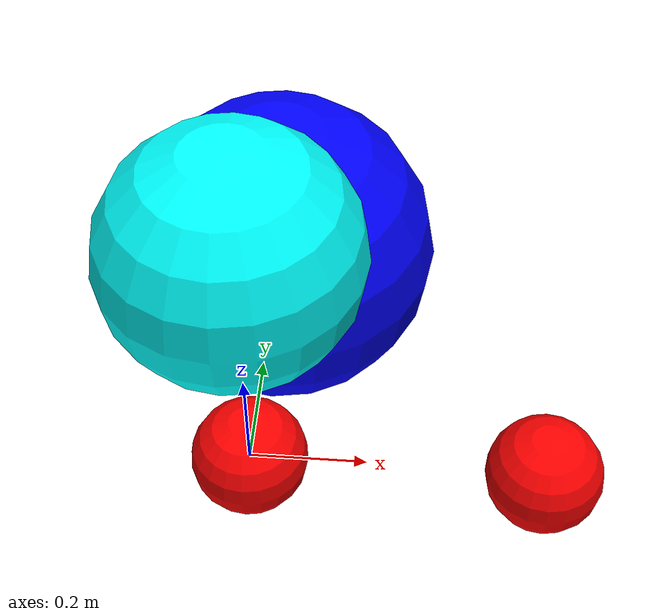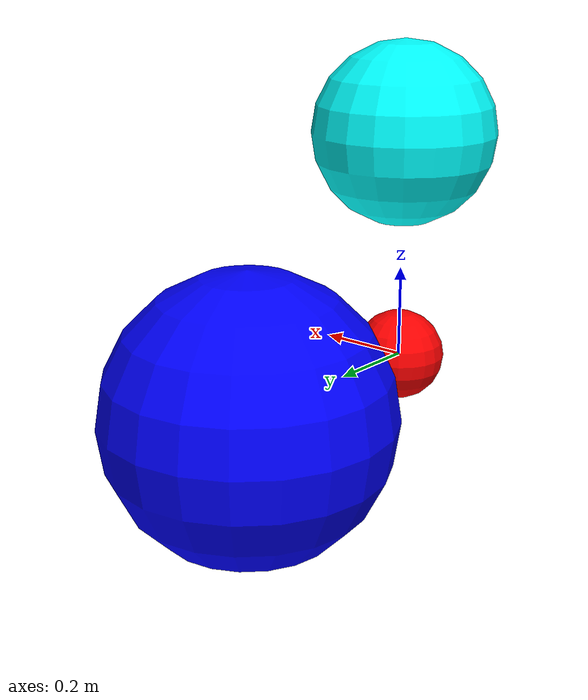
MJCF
<mujoco>

    <default class="l1">
        <geom rgba="1 0 0 1" size="0.1"/>
        <default class="s1">
        </default>
    </default>

    <default class="l1">
        <default class="x1">
            <default class="green">
                <geom rgba="0 1 1 1"/>
            </default>
        </default>
    </default>

    <worldbody>
        <geom type="sphere" size="0.1" pos="0 0 0" class="s1"/>
        <body childclass="green">
            <geom type="sphere" size="0.2" pos="0 0 0.5"/>
            <geom type="sphere" rgba="0 0 1 1" size="0.3" pos="0 0.5 0"/>
            <geom type="sphere" class="l1" pos="0.5 0 0"/>
        </body>
    </worldbody>
</mujoco>
